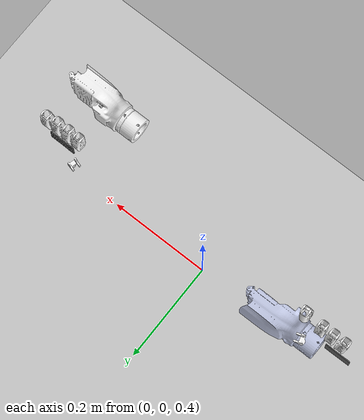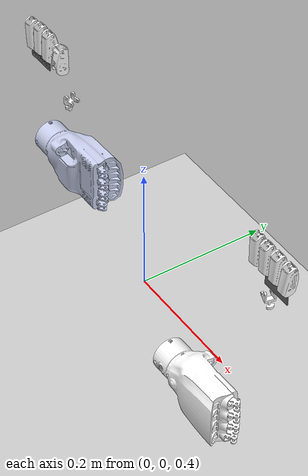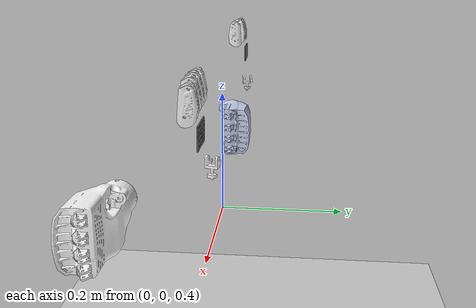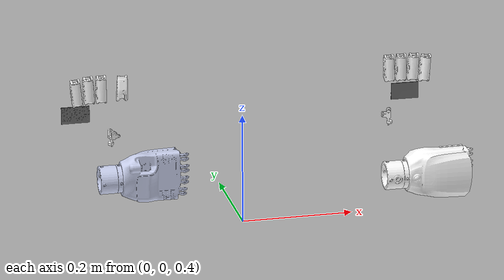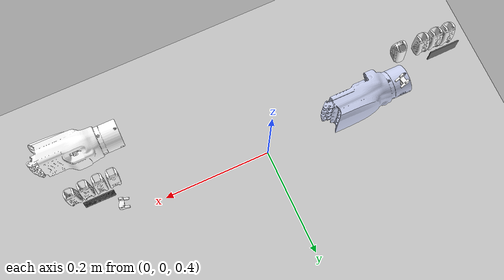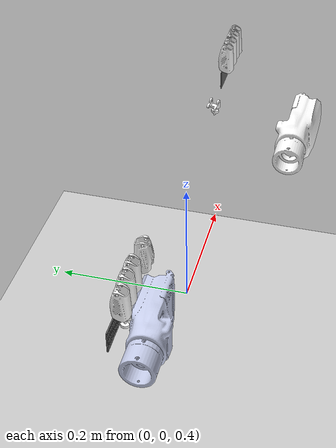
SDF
<?xml version="1.0" ?>
<sdf version="1.7">
  <world name="ftp_dual_hands_world">
    <!-- Physics settings -->
    <physics name="default" type="ode">
      <max_step_size>0.001</max_step_size>
      <real_time_factor>1.0</real_time_factor>
      <real_time_update_rate>1000</real_time_update_rate>
    </physics>

    <!-- Light sources -->
    <light type="directional" name="sun">
      <cast_shadows>true</cast_shadows>
      <pose>0 0 10 0 0 0</pose>
      <diffuse>1 1 1 1</diffuse>
      <specular>0.5 0.5 0.5 1</specular>
      <attenuation>
        <range>1000</range>
        <constant>0.9</constant>
        <linear>0.01</linear>
        <quadratic>0.001</quadratic>
      </attenuation>
      <direction>-0.5 0.1 -0.9</direction>
    </light>

    <!-- Ground plane -->
    <model name="ground_plane">
      <static>true</static>
      <link name="link">
        <collision name="collision">
          <geometry>
            <plane>
              <normal>0 0 1</normal>
              <size>100 100</size>
            </plane>
          </geometry>
        </collision>
        <visual name="visual">
          <geometry>
            <plane>
              <normal>0 0 1</normal>
              <size>100 100</size>
            </plane>
          </geometry>
          <material>
            <ambient>0.8 0.8 0.8 1</ambient>
            <diffuse>0.8 0.8 0.8 1</diffuse>
            <specular>0.8 0.8 0.8 1</specular>
          </material>
        </visual>
      </link>
    </model>

    <!-- FTP Left Hand -->
    <model name="ftp_left_hand">
      <pose>-0.3 0 0.5 0 0 0</pose>
      <static>true</static>

      <!-- Base Link -->
      <link name="left_base_link">
        <pose>0.0415 0 0 3.1415926535 -1.5707963267 0</pose>
        <inertial>
          <mass>0.62266</mass>
          <pose>-0.000129826516506615 -0.00373209820390109 0.0826860453890524 0 0 0</pose>
          <inertia>
            <ixx>0.000221307823686699</ixx>
            <ixy>1.16490748163886E-06</ixy>
            <ixz>-5.80325306205011E-07</ixz>
            <iyy>0.00026513454780435</iyy>
            <iyz>1.55187520961687E-05</iyz>
            <izz>0.000132311385681939</izz>
          </inertia>
        </inertial>
        <visual name="visual">
          <geometry>
            <mesh>
              <uri>file://meshes/left_base_link.STL</uri>
            </mesh>
          </geometry>
          <material>
            <ambient>0.792 0.820 0.933 1</ambient>
            <diffuse>0.792 0.820 0.933 1</diffuse>
          </material>
        </visual>
        <collision name="collision">
          <geometry>
            <mesh>
              <uri>file://meshes/left_base_link.STL</uri>
            </mesh>
          </geometry>
        </collision>
      </link>

      <!-- Palm Force Sensor -->
      <link name="left_palm_force_sensor">
        <pose>0.00368181 0.012296 0.1196 1.5708 0 0</pose>
        <inertial>
          <mass>0.001</mass>
          <pose>-0.000120093335198468 0.000717297413647363 -0.000692889069965119 0 0 0</pose>
          <inertia>
            <ixx>1.79237847416137E-07</ixx>
            <ixy>-3.62335250998281E-10</ixy>
            <ixz>2.06838829668637E-10</ixz>
            <iyy>5.01887324843558E-07</iyy>
            <iyz>-4.23537057624967E-10</iyz>
            <izz>6.80017237748533E-07</izz>
          </inertia>
        </inertial>
        <visual name="visual">
          <geometry>
            <mesh>
              <uri>file://meshes/left_palm_force_sensor.STL</uri>
            </mesh>
          </geometry>
          <material>
            <ambient>0.412 0.412 0.412 1</ambient>
            <diffuse>0.412 0.412 0.412 1</diffuse>
          </material>
        </visual>
        <collision name="collision">
          <geometry>
            <mesh>
              <uri>file://meshes/left_palm_force_sensor.STL</uri>
            </mesh>
          </geometry>
        </collision>
      </link>

      <!-- Thumb Segments -->
      <link name="left_thumb_1">
        <pose>0.0686 0.02101 0.0689 0 0 0</pose>
        <inertial>
          <mass>0.00746</mass>
          <pose>0.000892542633026139 0.000344874761906076 0.00159995221661673 0 0 0</pose>
          <inertia>
            <ixx>1.29835204070593E-07</ixx>
            <ixy>5.71164167481936E-09</ixy>
            <ixz>1.48756956370697E-08</ixz>
            <iyy>1.11222117346005E-07</iyy>
            <iyz>2.10520547066675E-09</iyz>
            <izz>7.03400614104064E-08</izz>
          </inertia>
        </inertial>
        <visual name="visual">
          <geometry>
            <mesh>
              <uri>file://meshes/left_thumb_1.STL</uri>
            </mesh>
          </geometry>
          <material>
            <ambient>1 1 1 1</ambient>
            <diffuse>1 1 1 1</diffuse>
          </material>
        </visual>
        <collision name="collision">
          <geometry>
            <mesh>
              <uri>file://meshes/left_thumb_1.STL</uri>
            </mesh>
          </geometry>
        </collision>
      </link>

      <!-- Index Finger Segments -->
      <link name="left_index_1">
        <pose>0.077359 0.00056467 0.1564 1.6057 0 1.5708</pose>
        <inertial>
          <mass>0.02841</mass>
          <pose>0.00219417498631414 0.0127409366861228 -0.00664941200246505 0 0 0</pose>
          <inertia>
            <ixx>1.13161491626765E-06</ixx>
            <ixy>-7.33862677697264E-08</ixy>
            <ixz>-1.02130129088669E-11</ixz>
            <iyy>5.50297964253695E-07</iyy>
            <iyz>-2.4656656045715E-11</iyz>
            <izz>1.17483798775546E-06</izz>
          </inertia>
        </inertial>
        <visual name="visual">
          <geometry>
            <mesh>
              <uri>file://meshes/left_index_1.STL</uri>
            </mesh>
          </geometry>
          <material>
            <ambient>1 1 1 1</ambient>
            <diffuse>1 1 1 1</diffuse>
          </material>
        </visual>
        <collision name="collision">
          <geometry>
            <mesh>
              <uri>file://meshes/left_index_1.STL</uri>
            </mesh>
          </geometry>
        </collision>
      </link>

      <!-- Middle Finger Segments -->
      <link name="left_middle_1">
        <pose>0.056 0.00056467 0.157 1.5708 0 1.5708</pose>
        <inertial>
          <mass>0.02841</mass>
          <pose>0.00219417514476306 0.0127409366564024 -0.00664941207814898 0 0 0</pose>
          <inertia>
            <ixx>1.13161520197722E-06</ixx>
            <ixy>-7.33862680995538E-08</ixy>
            <ixz>-1.02139184270751E-11</ixz>
            <iyy>5.50298012585693E-07</iyy>
            <iyz>-2.46573793877139E-11</iyz>
            <izz>1.17483827063381E-06</izz>
          </inertia>
        </inertial>
        <visual name="visual">
          <geometry>
            <mesh>
              <uri>file://meshes/left_middle_1.STL</uri>
            </mesh>
          </geometry>
          <material>
            <ambient>1 1 1 1</ambient>
            <diffuse>1 1 1 1</diffuse>
          </material>
        </visual>
        <collision name="collision">
          <geometry>
            <mesh>
              <uri>file://meshes/left_middle_1.STL</uri>
            </mesh>
          </geometry>
        </collision>
      </link>

      <!-- Ring Finger Segments -->
      <link name="left_ring_1">
        <pose>0.034470 0.00056467 0.15683 1.5184 0 1.5708</pose>
        <inertial>
          <mass>0.02841</mass>
          <pose>0.0021941753069302 0.0127409362457164 -0.0066494113506478 0 0 0</pose>
          <inertia>
            <ixx>1.13161545597431E-06</ixx>
            <ixy>-7.33862914032464E-08</ixy>
            <ixz>-1.02306404399082E-11</ixz>
            <iyy>5.50298060557667E-07</iyy>
            <iyz>-2.46432317692491E-11</iyz>
            <izz>1.17483845442561E-06</izz>
          </inertia>
        </inertial>
        <visual name="visual">
          <geometry>
            <mesh>
              <uri>file://meshes/left_ring_1.STL</uri>
            </mesh>
          </geometry>
          <material>
            <ambient>1 1 1 1</ambient>
            <diffuse>1 1 1 1</diffuse>
          </material>
        </visual>
        <collision name="collision">
          <geometry>
            <mesh>
              <uri>file://meshes/left_ring_1.STL</uri>
            </mesh>
          </geometry>
        </collision>
      </link>

      <!-- Little Finger Segments -->
      <link name="left_little_1">
        <pose>0.013084 0.00056467 0.15365 1.4661 0 1.5708</pose>
        <inertial>
          <mass>0.02841</mass>
          <pose>0.00219418439746801 0.0127409392027769 -0.00664940009923338 0 0 0</pose>
          <inertia>
            <ixx>1.13161501430240E-06</ixx>
            <ixy>-7.33861740599384E-08</ixy>
            <ixz>-9.70270798846837E-12</ixz>
            <iyy>5.50297161486766E-07</iyy>
            <iyz>-2.47676062272043E-11</iyz>
            <izz>1.17483833262416E-06</izz>
          </inertia>
        </inertial>
        <visual name="visual">
          <geometry>
            <mesh>
              <uri>file://meshes/left_little_1.STL</uri>
            </mesh>
          </geometry>
          <material>
            <ambient>1 1 1 1</ambient>
            <diffuse>1 1 1 1</diffuse>
          </material>
        </visual>
        <collision name="collision">
          <geometry>
            <mesh>
              <uri>file://meshes/left_little_1.STL</uri>
            </mesh>
          </geometry>
        </collision>
      </link>
    </model>

    <!-- FTP Right Hand -->
    <model name="ftp_right_hand">
      <pose>0.3 0 0.5 0 0 0</pose>
      <static>true</static>

      <!-- Base Link -->
      <link name="right_base_link">
        <pose>0.0415 0 0 0 1.5707963267 0</pose>
        <inertial>
          <mass>0.62266</mass>
          <pose>4.56066702604653E-05 -0.003106244650993 0.0721752784828355 0 0 0</pose>
          <inertia>
            <ixx>0.000238088630601122</ixx>
            <ixy>-1.16726665812887E-06</ixy>
            <ixz>5.77609124558337E-07</ixz>
            <iyy>0.00028210406583092</iyy>
            <iyz>1.55368683899448E-05</iyz>
            <izz>0.000154836898082308</izz>
          </inertia>
        </inertial>
        <visual name="visual">
          <geometry>
            <mesh>
              <uri>file://meshes/right_base_link.STL</uri>
            </mesh>
          </geometry>
          <material>
            <ambient>1 1 1 1</ambient>
            <diffuse>1 1 1 1</diffuse>
          </material>
        </visual>
        <collision name="collision">
          <geometry>
            <mesh>
              <uri>file://meshes/right_base_link.STL</uri>
            </mesh>
          </geometry>
        </collision>
      </link>

      <!-- Palm Force Sensor -->
      <link name="right_palm_force_sensor">
        <pose>-0.00036819 0.012296 0.1196 1.5708 0 -3.1416</pose>
        <inertial>
          <mass>0.001</mass>
          <pose>0.000120426871221421 0.000717269582936034 -0.0006928935004962 0 0 0</pose>
          <inertia>
            <ixx>1.792409847502E-07</ixx>
            <ixy>3.5297874278755E-10</ixy>
            <ixz>-2.06007907879908E-10</ixz>
            <iyy>5.01925280756008E-07</iyy>
            <iyz>-4.23310809567535E-10</iyz>
            <izz>6.80058307355101E-07</izz>
          </inertia>
        </inertial>
        <visual name="visual">
          <geometry>
            <mesh>
              <uri>file://meshes/right_palm_force_sensor.STL</uri>
            </mesh>
          </geometry>
          <material>
            <ambient>0.412 0.412 0.412 1</ambient>
            <diffuse>0.412 0.412 0.412 1</diffuse>
          </material>
        </visual>
        <collision name="collision">
          <geometry>
            <mesh>
              <uri>file://meshes/right_palm_force_sensor.STL</uri>
            </mesh>
          </geometry>
        </collision>
      </link>

      <!-- Thumb Segments -->
      <link name="right_thumb_1">
        <pose>-0.0269 0.02101 0.0689 0 0 0</pose>
        <inertial>
          <mass>0.00746</mass>
          <pose>-0.000892586815740379 0.000344905600937098 0.00159994421661698 0 0 0</pose>
          <inertia>
            <ixx>1.29835194524364E-07</ixx>
            <ixy>-5.71160730713237E-09</ixy>
            <ixz>1.48758957374632E-08</ixz>
            <iyy>1.11222050936534E-07</iyy>
            <iyz>-2.10521827472609E-09</iyz>
            <izz>7.03400601569091E-08</izz>
          </inertia>
        </inertial>
        <visual name="visual">
          <geometry>
            <mesh>
              <uri>file://meshes/right_thumb_1.STL</uri>
            </mesh>
          </geometry>
          <material>
            <ambient>1 1 1 1</ambient>
            <diffuse>1 1 1 1</diffuse>
          </material>
        </visual>
        <collision name="collision">
          <geometry>
            <mesh>
              <uri>file://meshes/right_thumb_1.STL</uri>
            </mesh>
          </geometry>
        </collision>
      </link>

      <!-- Index Finger Segments -->
      <link name="right_index_1">
        <pose>-0.038679 0.00056467 0.1564 1.6057 0 -1.5708</pose>
        <inertial>
          <mass>0.02841</mass>
          <pose>-0.00219417482969622 0.0127409366565626 -0.00664941200246505 0 0 0</pose>
          <inertia>
            <ixx>1.13161497176563E-06</ixx>
            <ixy>7.33862739323413E-08</ixy>
            <ixz>1.02122975969852E-11</ixz>
            <iyy>5.50297969803493E-07</iyy>
            <iyz>2.465893504551E-11</iyz>
            <izz>1.17483803325344E-06</izz>
          </inertia>
        </inertial>
        <visual name="visual">
          <geometry>
            <mesh>
              <uri>file://meshes/right_index_1.STL</uri>
            </mesh>
          </geometry>
          <material>
            <ambient>1 1 1 1</ambient>
            <diffuse>1 1 1 1</diffuse>
          </material>
        </visual>
        <collision name="collision">
          <geometry>
            <mesh>
              <uri>file://meshes/right_index_1.STL</uri>
            </mesh>
          </geometry>
        </collision>
      </link>

      <!-- Middle Finger Segments -->
      <link name="right_middle_1">
        <pose>-0.0171 0.00056467 0.157 1.5708 0 -1.5708</pose>
        <inertial>
          <mass>0.02841</mass>
          <pose>-0.00219417478814514 0.0127409366268324 -0.00664941207814898 0 0 0</pose>
          <inertia>
            <ixx>1.1316149557554E-06</ixx>
            <ixy>7.33862743651549E-08</ixy>
            <ixz>1.02132031162304E-11</ixz>
            <iyy>5.50297969652712E-07</iyy>
            <iyz>2.46615051816588E-11</iyz>
            <izz>1.17483802522199E-06</izz>
          </inertia>
        </inertial>
        <visual name="visual">
          <geometry>
            <mesh>
              <uri>file://meshes/right_middle_1.STL</uri>
            </mesh>
          </geometry>
          <material>
            <ambient>1 1 1 1</ambient>
            <diffuse>1 1 1 1</diffuse>
          </material>
        </visual>
        <collision name="collision">
          <geometry>
            <mesh>
              <uri>file://meshes/right_middle_1.STL</uri>
            </mesh>
          </geometry>
        </collision>
      </link>

      <!-- Ring Finger Segments -->
      <link name="right_ring_1">
        <pose>0.0045302 0.00056467 0.15683 1.5184 0 -1.5708</pose>
        <inertial>
          <mass>0.02841</mass>
          <pose>-0.00219417465246989 0.0127409362160862 -0.0066494113506478 0 0 0</pose>
          <inertia>
            <ixx>1.13161521046633E-06</ixx>
            <ixy>7.33862976638613E-08</ixy>
            <ixz>1.02299251281265E-11</ixz>
            <iyy>5.50298017624686E-07</iyy>
            <iyz>2.46423372584933E-11</iyz>
            <izz>1.17483820891763E-06</izz>
          </inertia>
        </inertial>
        <visual name="visual">
          <geometry>
            <mesh>
              <uri>file://meshes/right_ring_1.STL</uri>
            </mesh>
          </geometry>
          <material>
            <ambient>1 1 1 1</ambient>
            <diffuse>1 1 1 1</diffuse>
          </material>
        </visual>
        <collision name="collision">
          <geometry>
            <mesh>
              <uri>file://meshes/right_ring_1.STL</uri>
            </mesh>
          </geometry>
        </collision>
      </link>

      <!-- Little Finger Segments -->
      <link name="right_little_1">
        <pose>0.025916 0.00056467 0.15365 1.4661 0 -1.5708</pose>
        <inertial>
          <mass>0.02841</mass>
          <pose>-0.00219418424084009 0.0127409391731467 -0.00664940009923338 0 0 0</pose>
          <inertia>
            <ixx>1.13161476879442E-06</ixx>
            <ixy>7.33861803205532E-08</ixy>
            <ixz>9.70201262730489E-12</ixz>
            <iyy>5.50297118553785E-07</iyy>
            <iyz>2.47668324333468E-11</iyz>
            <izz>1.17483808711618E-06</izz>
          </inertia>
        </inertial>
        <visual name="visual">
          <geometry>
            <mesh>
              <uri>file://meshes/right_little_1.STL</uri>
            </mesh>
          </geometry>
          <material>
            <ambient>1 1 1 1</ambient>
            <diffuse>1 1 1 1</diffuse>
          </material>
        </visual>
        <collision name="collision">
          <geometry>
            <mesh>
              <uri>file://meshes/right_little_1.STL</uri>
            </mesh>
          </geometry>
        </collision>
      </link>
    </model>

    <!-- GUI settings -->
    <gui fullscreen='0'>
      <camera name='user_camera'>
        <pose>1 1 1 0 0.5 2.4</pose>
        <view_controller>orbit</view_controller>
        <projection_type>perspective</projection_type>
      </camera>
    </gui>
  </world>
</sdf>
